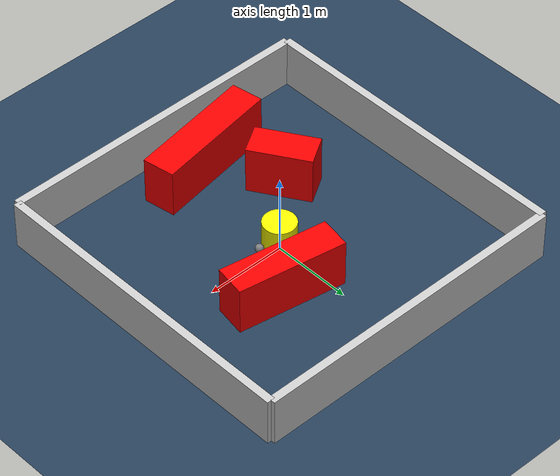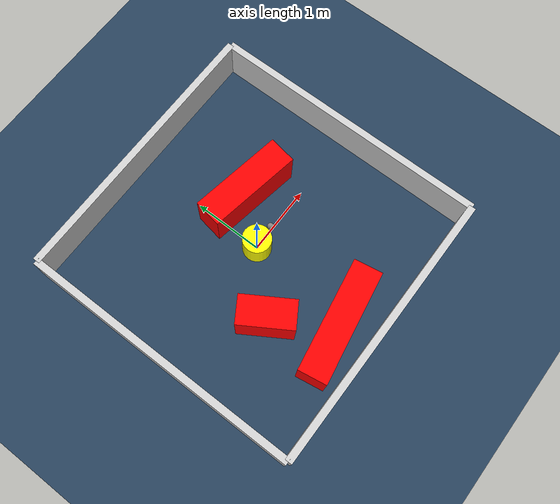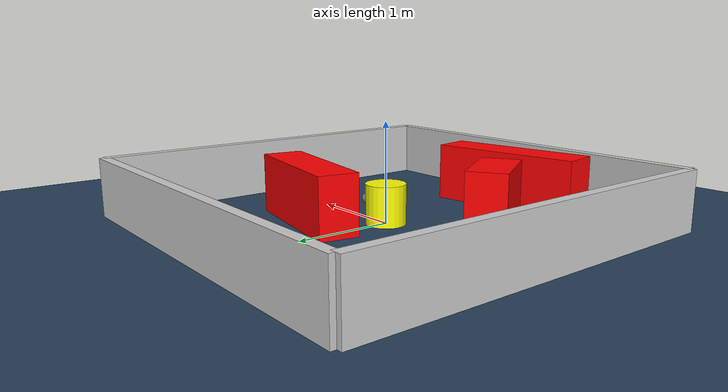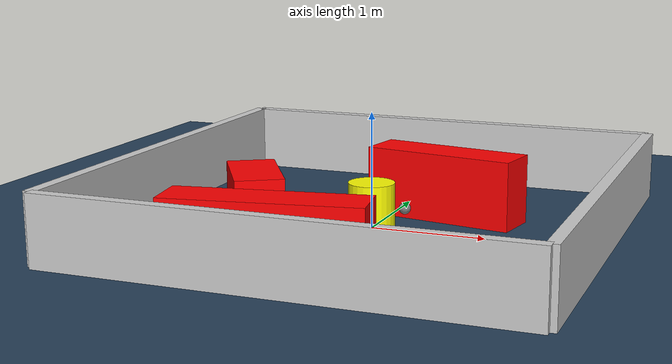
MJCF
<?xml version="1.0" ?>
<mujoco model="generated_environment">
  <option timestep="0.01" integrator="RK4" cone="elliptic"/>
  <default>
    <geom density="1"/>
  </default>
  <asset>
    <texture builtin="gradient" height="3072" rgb1="0.3 0.5 0.7" rgb2="0 0 0" type="skybox" width="512"/>
    <texture builtin="checker" height="300" mark="edge" markrgb="0.8 0.8 0.8" name="groundplane" rgb1="0.2 0.3 0.4" rgb2="0.1 0.2 0.3" type="2d" width="300"/>
    <material name="groundplane" reflectance="0.2" texrepeat="5 5" texture="groundplane" texuniform="true"/>
    <material name="robot" rgba="0.0 1.0 0.0 1"/>
  </asset>
  <worldbody>
    <light dir="0 0 -1" directional="true" pos="0 0 1.5"/>
    <geom condim="4" friction="1.0 0.005 0.001" material="groundplane" name="floor" size="0 0 0.05" type="plane"/>
    <body name="walls">
      <geom name="wall_1" condim="4" pos="-2.0 0.0 0.3" rgba="0.800000011920929 0.800000011920929 0.800000011920929 1.0" size="0.05 2.0 0.3" type="box"/>
      <geom name="wall_2" condim="4" pos="2.0 0.0 0.3" rgba="0.800000011920929 0.800000011920929 0.800000011920929 1.0" size="0.05 2.0 0.3" type="box"/>
      <geom name="wall_3" condim="4" pos="0.0 -2.0 0.3" rgba="0.800000011920929 0.800000011920929 0.800000011920929 1.0" size="2.0 0.05 0.3" type="box"/>
      <geom name="wall_4" condim="4" pos="0.0 2.0 0.3" rgba="0.800000011920929 0.800000011920929 0.800000011920929 1.0" size="2.0 0.05 0.3" type="box"/>
    </body>
    <body name="robot">
      <joint name="joint_x" type="slide" pos="0 0 0" axis="1 0 0"/>
      <joint name="joint_y" type="slide" pos="0 0 0" axis="0 1 0"/>
      <geom name="robot" type="sphere" pos="0.3 0.0 0.2" size="0.05" mass="5." friction="1.0 0.005 0.0001" condim="4" rgba="0.5 0.5 0.5 1.0"/>
      <site name="sensor_ball"/>
    </body>
    <body name="obstacle_movable_1">
      <geom name="obstacle_movable_1" condim="4" pos="0.0 0.0 0.2" euler="0 0 0.0" friction="1.0 0.005 0.001" rgba="1.0 1.0 0.0 1.0" size="0.2 0.2 0.0" type="cylinder" mass="0.1"/>
      <joint type="free"/>
    </body>
    <body name="obstacle_2_static">
      <geom name="obstacle_2_static" condim="4" pos="-0.7383797383640995 -0.720479408048343 0.3" euler="0 0 121.78762535693033" friction="1.0 0.005 0.001" rgba="1 0 0 1" size="0.38498285427866186 0.2 0.3" type="box"/>
    </body>
    <body name="obstacle_3_static">
      <geom name="obstacle_3_static" condim="4" pos="0.4866560486003162 0.5661533939313916 0.3" euler="0 0 170.26628543556504" friction="1.0 0.005 0.001" rgba="1 0 0 1" size="0.6742766275375143 0.2 0.3" type="box"/>
    </body>
    <body name="obstacle_4_static">
      <geom name="obstacle_4_static" condim="4" pos="-0.2624096200095777 -1.5143381668986935 0.3" euler="0 0 9.403021098900677" friction="1.0 0.005 0.001" rgba="1 0 0 1" size="0.7945543453976677 0.2 0.3" type="box"/>
    </body>
  </worldbody>
  <actuator>
    <motor name="actuator_x" joint="joint_x" gear="1" ctrlrange="-1 1"/>
    <motor name="actuator_y" joint="joint_y" gear="1" ctrlrange="-1 1"/>
  </actuator>
</mujoco>
